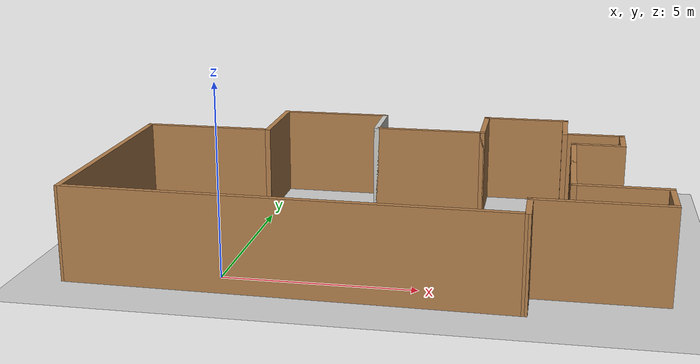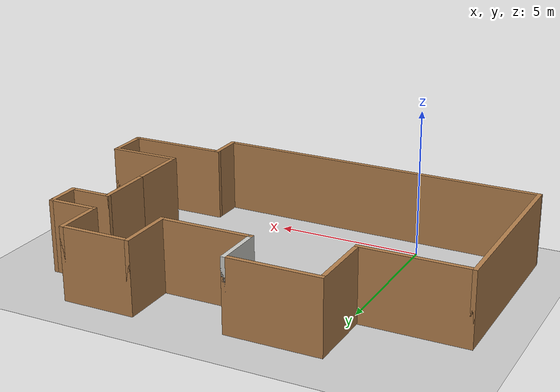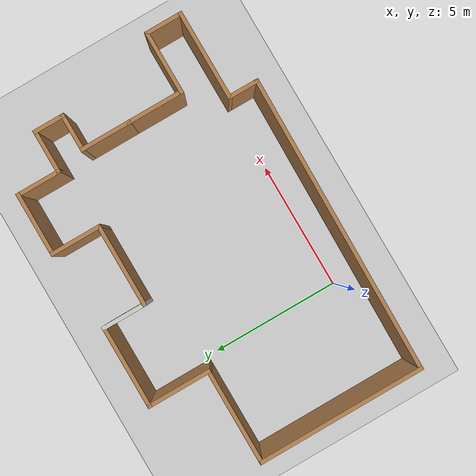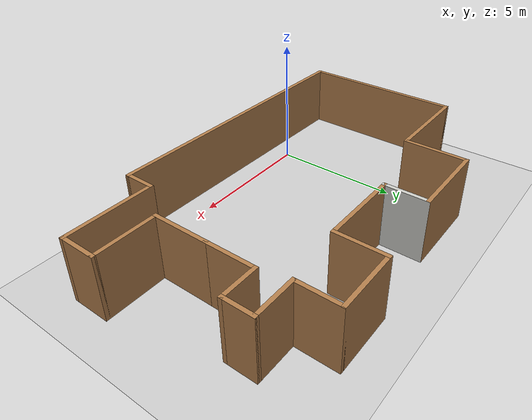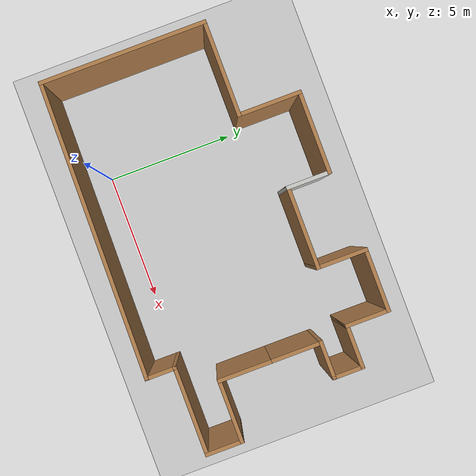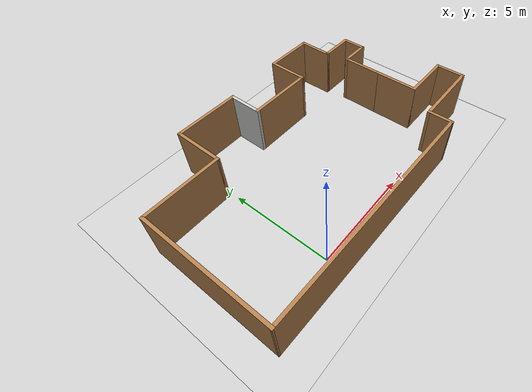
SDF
<sdf version="1.7">
 <world name="default">
  <light name="sun" type="directional">
   <pose>0 0 10 0 -0 0</pose>
   <diffuse>0.8 0.8 0.8 1</diffuse>
   <specular>0.2 0.2 0.2 1</specular>
   <attenuation>
    <range>1000</range>
    <constant>0.9</constant>
    <linear>0.01</linear>
    <quadratic>0.001</quadratic>
   </attenuation>
   <direction>-0.5 0.1 -0.9</direction>
   <spot><inner_angle>0</inner_angle><outer_angle>0</outer_angle><falloff>0</falloff></spot>
  </light>
  <model name="ground_plane">
   <static>1</static>
   <link name="link">
    <collision name="collision">
     <geometry><plane><normal>0 0 1</normal><size>100 100</size></plane></geometry>
     <surface>
      <contact><collide_bitmask>65535</collide_bitmask></contact>
      <friction><ode><mu>100</mu><mu2>50</mu2></ode></friction>
     </surface>
    </collision>
    <visual name="visual">
     <cast_shadows>0</cast_shadows>
     <geometry><plane><normal>0 0 1</normal><size>100 100</size></plane></geometry>
     <material>
      <script><uri>file://media/materials/scripts/gazebo.material</uri><name>Gazebo/Grey</name></script>
     </material>
    </visual>
   </link>
  </model>
  <gravity>0 0 -9.8</gravity>
  <magnetic_field>6e-06 2.3e-05 -4.2e-05</magnetic_field>
  <atmosphere type="adiabatic"/>
  <physics type="ode">
   <max_step_size>0.001</max_step_size>
   <real_time_factor>1</real_time_factor>
   <real_time_update_rate>1000</real_time_update_rate>
  </physics>
  <scene><ambient>0.4 0.4 0.4 1</ambient><background>0.7 0.7 0.7 1</background><shadows>1</shadows></scene>
  <spherical_coordinates>
   <surface_model>EARTH_WGS84</surface_model>
   <latitude_deg>0</latitude_deg>
   <longitude_deg>0</longitude_deg>
   <elevation>0</elevation>
   <heading_deg>0</heading_deg>
  </spherical_coordinates>
  <model name="my_first_word">
   <pose>3.58451 3.50951 0 0 -0 0</pose>
   <link name="Wall_0">
    <collision name="Wall_0_Collision">
     <geometry><box><size>6.5 0.15 2.5</size></box></geometry>
     <pose>0 0 1.25 0 -0 0</pose>
    </collision>
    <visual name="Wall_0_Visual">
     <pose>0 0 1.25 0 -0 0</pose>
     <geometry><box><size>6.5 0.15 2.5</size></box></geometry>
     <material>
      <script><uri>file://media/materials/scripts/gazebo.material</uri><name>Gazebo/Wood</name></script>
      <ambient>1 1 1 1</ambient>
     </material>
     <meta><layer>0</layer></meta>
    </visual>
    <pose>-7.37451 -1.22451 0 0 -0 1.5708</pose>
   </link>
   <link name="Wall_1">
    <collision name="Wall_1_Collision">
     <geometry><box><size>3.75 0.15 2.5</size></box></geometry>
     <pose>0 0 1.25 0 -0 0</pose>
    </collision>
    <visual name="Wall_1_Visual">
     <pose>0 0 1.25 0 -0 0</pose>
     <geometry><box><size>3.75 0.15 2.5</size></box></geometry>
     <material>
      <script><uri>file://media/materials/scripts/gazebo.material</uri><name>Gazebo/Wood</name></script>
      <ambient>1 1 1 1</ambient>
     </material>
     <meta><layer>0</layer></meta>
    </visual>
    <pose>-5.57451 1.95049 0 0 -0 0</pose>
   </link>
   <link name="Wall_10">
    <collision name="Wall_10_Collision">
     <geometry><box><size>1.25 0.15 2.5</size></box></geometry>
     <pose>0 0 1.25 0 -0 0</pose>
    </collision>
    <visual name="Wall_10_Visual">
     <pose>0 0 1.25 0 -0 0</pose>
     <geometry><box><size>1.25 0.15 2.5</size></box></geometry>
     <material>
      <script><uri>file://media/materials/scripts/gazebo.material</uri><name>Gazebo/Wood</name></script>
      <ambient>1 1 1 1</ambient>
     </material>
     <meta><layer>0</layer></meta>
    </visual>
    <pose>6.37549 2.40049 0 0 -0 -1.5708</pose>
   </link>
   <link name="Wall_11">
    <collision name="Wall_11_Collision">
     <geometry><box><size>1.5 0.15 2.5</size></box></geometry>
     <pose>0 0 1.25 0 -0 0</pose>
    </collision>
    <visual name="Wall_11_Visual">
     <pose>0 0 1.25 0 -0 0</pose>
     <geometry><box><size>1.5 0.15 2.5</size></box></geometry>
     <material>
      <script><uri>file://media/materials/scripts/gazebo.material</uri><name>Gazebo/Wood</name></script>
      <ambient>1 1 1 1</ambient>
     </material>
     <meta><layer>0</layer></meta>
    </visual>
    <pose>5.70049 1.85049 0 0 -0 3.14159</pose>
   </link>
   <link name="Wall_12">
    <collision name="Wall_12_Collision">
     <geometry><box><size>2 0.15 2.5</size></box></geometry>
     <pose>0 0 1.25 0 -0 0</pose>
    </collision>
    <visual name="Wall_12_Visual">
     <pose>0 0 1.25 0 -0 0</pose>
     <geometry><box><size>2 0.15 2.5</size></box></geometry>
     <material>
      <script><uri>file://media/materials/scripts/gazebo.material</uri><name>Gazebo/Wood</name></script>
      <ambient>1 1 1 1</ambient>
     </material>
     <meta><layer>0</layer></meta>
    </visual>
    <pose>5.02549 0.92549 0 0 -0 -1.5708</pose>
   </link>
   <link name="Wall_13">
    <collision name="Wall_13_Collision">
     <geometry><box><size>2.25 0.15 2.5</size></box></geometry>
     <pose>0 0 1.25 0 -0 0</pose>
    </collision>
    <visual name="Wall_13_Visual">
     <pose>0 0 1.25 0 -0 0</pose>
     <geometry><box><size>2.25 0.15 2.5</size></box></geometry>
     <material>
      <script><uri>file://media/materials/scripts/gazebo.material</uri><name>Gazebo/Wood</name></script>
      <ambient>1 1 1 1</ambient>
     </material>
     <meta><layer>0</layer></meta>
    </visual>
    <pose>5.02549 -1.04951 0 0 -0 -1.5708</pose>
   </link>
   <link name="Wall_14">
    <collision name="Wall_14_Collision">
     <geometry><box><size>2.5 0.15 2.5</size></box></geometry>
     <pose>0 0 1.25 0 -0 0</pose>
    </collision>
    <visual name="Wall_14_Visual">
     <pose>0 0 1.25 0 -0 0</pose>
     <geometry><box><size>2.5 0.15 2.5</size></box></geometry>
     <material>
      <script><uri>file://media/materials/scripts/gazebo.material</uri><name>Gazebo/Wood</name></script>
      <ambient>1 1 1 1</ambient>
     </material>
     <meta><layer>0</layer></meta>
    </visual>
    <pose>6.20049 -2.09951 0 0 -0 0</pose>
   </link>
   <link name="Wall_15">
    <collision name="Wall_15_Collision">
     <geometry><box><size>1.5 0.15 2.5</size></box></geometry>
     <pose>0 0 1.25 0 -0 0</pose>
    </collision>
    <visual name="Wall_15_Visual">
     <pose>0 0 1.25 0 -0 0</pose>
     <geometry><box><size>1.5 0.15 2.5</size></box></geometry>
     <material>
      <script><uri>file://media/materials/scripts/gazebo.material</uri><name>Gazebo/Wood</name></script>
      <ambient>1 1 1 1</ambient>
     </material>
     <meta><layer>0</layer></meta>
    </visual>
    <pose>7.37549 -2.77451 0 0 -0 -1.5708</pose>
   </link>
   <link name="Wall_16">
    <collision name="Wall_16_Collision">
     <geometry><box><size>3.5 0.15 2.5</size></box></geometry>
     <pose>0 0 1.25 0 -0 0</pose>
    </collision>
    <visual name="Wall_16_Visual">
     <pose>0 0 1.25 0 -0 0</pose>
     <geometry><box><size>3.5 0.15 2.5</size></box></geometry>
     <material>
      <script><uri>file://media/materials/scripts/gazebo.material</uri><name>Gazebo/Wood</name></script>
      <ambient>1 1 1 1</ambient>
     </material>
     <meta><layer>0</layer></meta>
    </visual>
    <pose>5.70049 -3.44951 0 0 -0 3.14159</pose>
   </link>
   <link name="Wall_17">
    <collision name="Wall_17_Collision">
     <geometry><box><size>1.25 0.15 2.5</size></box></geometry>
     <pose>0 0 1.25 0 -0 0</pose>
    </collision>
    <visual name="Wall_17_Visual">
     <pose>0 0 1.25 0 -0 0</pose>
     <geometry><box><size>1.25 0.15 2.5</size></box></geometry>
     <material>
      <script><uri>file://media/materials/scripts/gazebo.material</uri><name>Gazebo/Wood</name></script>
      <ambient>1 1 1 1</ambient>
     </material>
     <meta><layer>0</layer></meta>
    </visual>
    <pose>4.02549 -3.99951 0 0 -0 -1.5708</pose>
   </link>
   <link name="Wall_18">
    <collision name="Wall_18_Collision">
     <geometry><box><size>11.551 0.15 2.5</size></box></geometry>
     <pose>0 0 1.25 0 -0 0</pose>
    </collision>
    <visual name="Wall_18_Visual">
     <pose>0 0 1.25 0 -0 0</pose>
     <geometry><box><size>11.551 0.15 2.5</size></box></geometry>
     <material>
      <script><uri>file://media/materials/scripts/gazebo.material</uri><name>Gazebo/Wood</name></script>
      <ambient>1 1 1 1</ambient>
     </material>
     <meta><layer>0</layer></meta>
    </visual>
    <pose>-1.67451 -4.47451 0 0 -0 3.12844</pose>
   </link>
   <link name="Wall_2">
    <collision name="Wall_2_Collision">
     <geometry><box><size>2.5 0.15 2.5</size></box></geometry>
     <pose>0 0 1.25 0 -0 0</pose>
    </collision>
    <visual name="Wall_2_Visual">
     <pose>0 0 1.25 0 -0 0</pose>
     <geometry><box><size>2.5 0.15 2.5</size></box></geometry>
     <material>
      <script><uri>file://media/materials/scripts/gazebo.material</uri><name>Gazebo/Wood</name></script>
      <ambient>1 1 1 1</ambient>
     </material>
     <meta><layer>0</layer></meta>
    </visual>
    <pose>-3.77451 3.12549 0 0 -0 1.5708</pose>
   </link>
   <link name="Wall_3">
    <collision name="Wall_3_Collision">
     <geometry><box><size>3.25 0.15 2.5</size></box></geometry>
     <pose>0 0 1.25 0 -0 0</pose>
    </collision>
    <visual name="Wall_3_Visual">
     <pose>0 0 1.25 0 -0 0</pose>
     <geometry><box><size>3.25 0.15 2.5</size></box></geometry>
     <material>
      <script><uri>file://media/materials/scripts/gazebo.material</uri><name>Gazebo/Wood</name></script>
      <ambient>1 1 1 1</ambient>
     </material>
     <meta><layer>0</layer></meta>
    </visual>
    <pose>-2.22451 4.30049 0 0 -0 0</pose>
   </link>
   <link name="Wall_4">
    <collision name="Wall_4_Collision">
     <geometry><box><size>1.75 0.15 2.5</size></box></geometry>
     <pose>0 0 1.25 0 -0 0</pose>
    </collision>
    <visual name="Wall_4_Visual">
     <pose>0 0 1.25 0 -0 0</pose>
     <geometry><box><size>1.75 0.15 2.5</size></box></geometry>
     <material>
      <script><uri>file://media/materials/scripts/gazebo.material</uri><name>Gazebo/CeilingTiled</name></script>
      <ambient>1 1 1 1</ambient>
     </material>
     <meta><layer>0</layer></meta>
    </visual>
    <pose>-0.67451 3.50049 0 0 -0 -1.5708</pose>
   </link>
   <link name="Wall_5">
    <collision name="Wall_5_Collision">
     <geometry><box><size>3.25 0.15 2.5</size></box></geometry>
     <pose>0 0 1.25 0 -0 0</pose>
    </collision>
    <visual name="Wall_5_Visual">
     <pose>0 0 1.25 0 -0 0</pose>
     <geometry><box><size>3.25 0.15 2.5</size></box></geometry>
     <material>
      <script><uri>file://media/materials/scripts/gazebo.material</uri><name>Gazebo/Wood</name></script>
      <ambient>1 1 1 1</ambient>
     </material>
     <meta><layer>0</layer></meta>
    </visual>
    <pose>0.87549 2.70049 0 0 -0 0</pose>
   </link>
   <link name="Wall_6">
    <collision name="Wall_6_Collision">
     <geometry><box><size>2 0.15 2.5</size></box></geometry>
     <pose>0 0 1.25 0 -0 0</pose>
    </collision>
    <visual name="Wall_6_Visual">
     <pose>0 0 1.25 0 -0 0</pose>
     <geometry><box><size>2 0.15 2.5</size></box></geometry>
     <material>
      <script><uri>file://media/materials/scripts/gazebo.material</uri><name>Gazebo/Wood</name></script>
      <ambient>1 1 1 1</ambient>
     </material>
     <meta><layer>0</layer></meta>
    </visual>
    <pose>2.42549 3.62549 0 0 -0 1.5708</pose>
   </link>
   <link name="Wall_7">
    <collision name="Wall_7_Collision">
     <geometry><box><size>2.5 0.15 2.5</size></box></geometry>
     <pose>0 0 1.25 0 -0 0</pose>
    </collision>
    <visual name="Wall_7_Visual">
     <pose>0 0 1.25 0 -0 0</pose>
     <geometry><box><size>2.5 0.15 2.5</size></box></geometry>
     <material>
      <script><uri>file://media/materials/scripts/gazebo.material</uri><name>Gazebo/Wood</name></script>
      <ambient>1 1 1 1</ambient>
     </material>
     <meta><layer>0</layer></meta>
    </visual>
    <pose>3.60049 4.55049 0 0 -0 0</pose>
   </link>
   <link name="Wall_8">
    <collision name="Wall_8_Collision">
     <geometry><box><size>1.75 0.15 2.5</size></box></geometry>
     <pose>0 0 1.25 0 -0 0</pose>
    </collision>
    <visual name="Wall_8_Visual">
     <pose>0 0 1.25 0 -0 0</pose>
     <geometry><box><size>1.75 0.15 2.5</size></box></geometry>
     <material>
      <script><uri>file://media/materials/scripts/gazebo.material</uri><name>Gazebo/Wood</name></script>
      <ambient>1 1 1 1</ambient>
     </material>
     <meta><layer>0</layer></meta>
    </visual>
    <pose>4.77549 3.75049 0 0 -0 -1.5708</pose>
   </link>
   <link name="Wall_9">
    <collision name="Wall_9_Collision">
     <geometry><box><size>1.75 0.15 2.5</size></box></geometry>
     <pose>0 0 1.25 0 -0 0</pose>
    </collision>
    <visual name="Wall_9_Visual">
     <pose>0 0 1.25 0 -0 0</pose>
     <geometry><box><size>1.75 0.15 2.5</size></box></geometry>
     <material>
      <script><uri>file://media/materials/scripts/gazebo.material</uri><name>Gazebo/Wood</name></script>
      <ambient>1 1 1 1</ambient>
     </material>
     <meta><layer>0</layer></meta>
    </visual>
    <pose>5.57549 2.95049 0 0 -0 0</pose>
   </link>
   <static>1</static>
  </model>
 </world>
</sdf>
